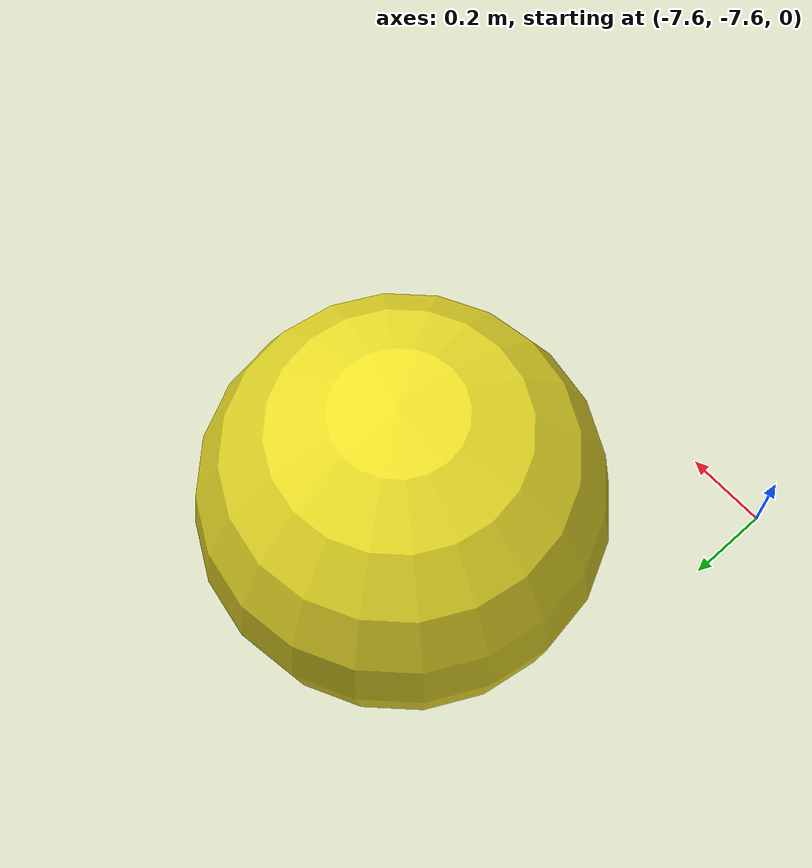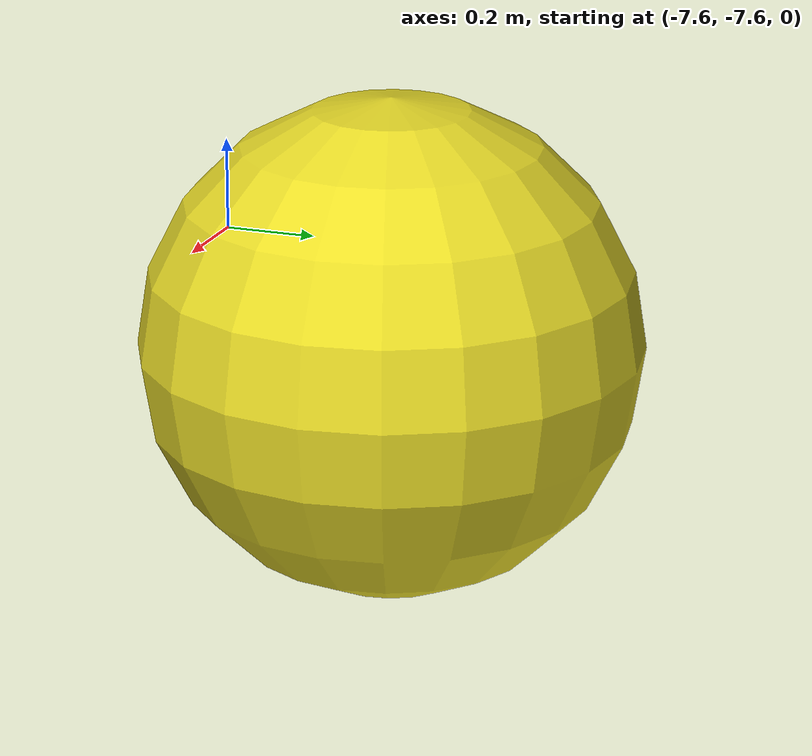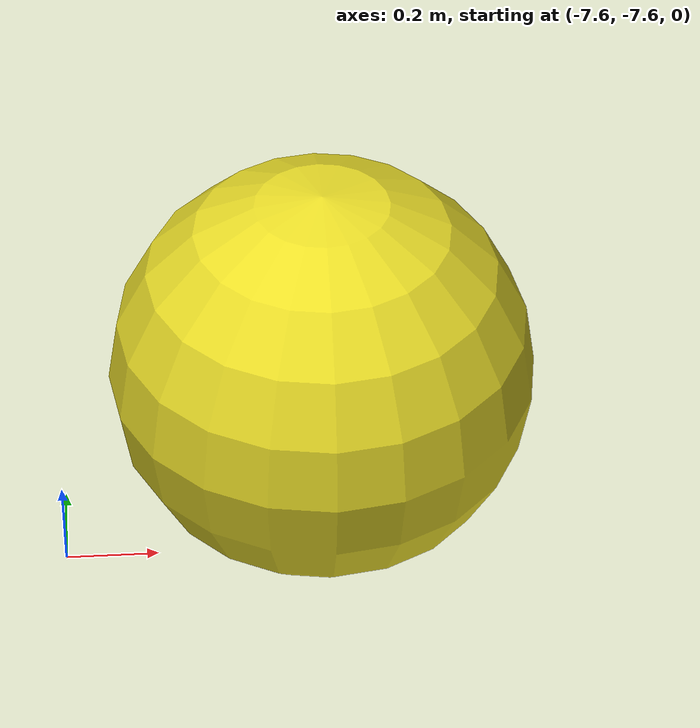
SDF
<?xml version="1.0" ?>
<sdf version="1.5">

<!-- https://github.com/uuvsimulator/uuv_simulator/wiki/Making-your-seabed-world-model -->

<spherical_coordinates>
  <surface_model>EARTH_WGS84</surface_model>
  <world_frame_orientation>ENU</world_frame_orientation>

  <latitude_deg>38.161479</latitude_deg>
  <longitude_deg>-122.454630</longitude_deg>
  <elevation>0</elevation>
  <heading_deg>180</heading_deg>
</spherical_coordinates>

  <world name="example_underwater">
    <frame name="earth">
      <!-- Définissez les coordonnées de référence, par exemple : -->
      <pose>0 0 0 0 0 0</pose>
    </frame>

    <model name='ground_plane'>
      <static>1</static>
      <link name='ground'>
        <collision name='collision'>
          <geometry>
            <plane >
              <xyz>0 0 -1</xyz>

              <normal>0 0 1</normal>
              <size>100 100</size>
            </plane>
          </geometry>
          <surface>
            <friction>
              <ode>
                <mu>100</mu>
                <mu2>50</mu2>
              </ode>
            </friction>
          </surface>
        </collision>
      </link>
    </model>
<model name='unit_sphere'>
    <link name='link'>
      <inertial>
        <mass>1</mass>
        <inertia>
          <ixx>0.1</ixx>
          <ixy>0</ixy>
          <ixz>0</ixz>
          <iyy>0.1</iyy>
          <iyz>0</iyz>
          <izz>0.1</izz>
        </inertia>
        <pose>0 0 0 0 -0 0</pose>
      </inertial>
      <self_collide>0</self_collide>
      <enable_wind>0</enable_wind>
      <kinematic>0</kinematic>
      <pose>-7 -7 0 0 -0 0</pose>
      <gravity>1</gravity>
      <visual name='visual'>
        <geometry>
          <sphere>
            <radius>0.5</radius>
          </sphere>
        </geometry>
        <material>
          <script>
            <name>Gazebo/Yellow</name>
            <uri>file://media/materials/scripts/gazebo.material</uri>
          </script>
          <shader type='pixel'>
            <normal_map>__default__</normal_map>
          </shader>
          <ambient>1 1 0 1</ambient>
          <diffuse>1 1 0 1</diffuse>
          <emissive>0 0 0 1</emissive>
        </material>
        <pose>0 0 0 0 -0 0</pose>
        <transparency>0</transparency>
        <cast_shadows>1</cast_shadows>
      </visual>
      <collision name='collision'>
        <laser_retro>0</laser_retro>
        <max_contacts>10</max_contacts>
        <pose>0 0 0 0 -0 0</pose>
        <geometry>
          <sphere>
            <radius>0.5</radius>
          </sphere>
        </geometry>
        <surface>
          <friction>
            <ode>
              <mu>1</mu>
              <mu2>1</mu2>
              <fdir1>0 0 0</fdir1>
              <slip1>0</slip1>
              <slip2>0</slip2>
            </ode>
            <torsional>
              <coefficient>1</coefficient>
              <patch_radius>0</patch_radius>
              <surface_radius>0</surface_radius>
              <use_patch_radius>1</use_patch_radius>
              <ode>
                <slip>0</slip>
              </ode>
            </torsional>
          </friction>
          <bounce>
            <restitution_coefficient>0</restitution_coefficient>
            <threshold>1e+06</threshold>
          </bounce>
          <contact>
            <collide_without_contact>0</collide_without_contact>
            <collide_without_contact_bitmask>1</collide_without_contact_bitmask>
            <collide_bitmask>1</collide_bitmask>
            <ode>
              <soft_cfm>0</soft_cfm>
              <soft_erp>0.2</soft_erp>
              <kp>1e+13</kp>
              <kd>1</kd>
              <max_vel>0.01</max_vel>
              <min_depth>0</min_depth>
            </ode>
            <bullet>
              <split_impulse>1</split_impulse>
              <split_impulse_penetration_threshold>-0.01</split_impulse_penetration_threshold>
              <soft_cfm>0</soft_cfm>
              <soft_erp>0.2</soft_erp>
              <kp>1e+13</kp>
              <kd>1</kd>
            </bullet>
          </contact>
        </surface>
      </collision>
    </link>
    <static>0</static>
    <allow_auto_disable>1</allow_auto_disable>
  </model>

  </world>

</sdf>
